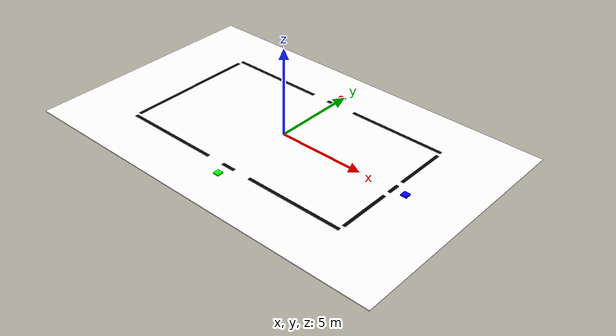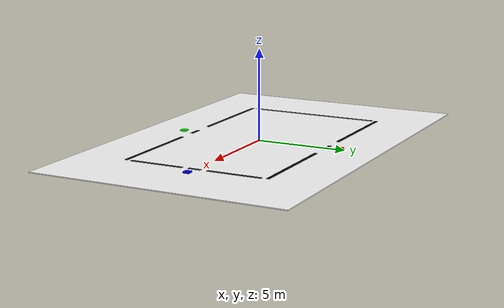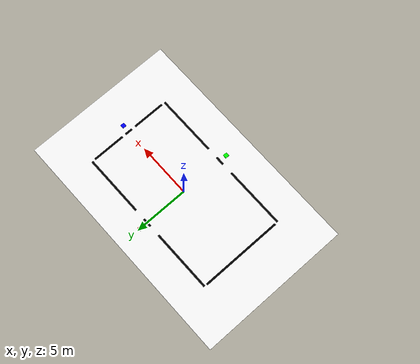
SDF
<?xml version="1.0" ?>
<sdf version="1.9">
  <world name="race_track_world">

    <light name="sun" type="directional">
      <pose>0 0 10 0 0 0</pose>
      <direction>-0.5 0.1 -1</direction>
    </light>

    <!-- Fehér padló -->
    <model name="ground_plane">
      <static>true</static>
      <link name="link">
        <collision name="collision">
          <geometry>
            <box>
              <size>22 14 0.05</size>
            </box>
          </geometry>
        </collision>
        <visual name="visual">
          <geometry>
            <box>
              <size>22 14 0.05</size>
            </box>
          </geometry>
          <material>
            <ambient>1 1 1 1</ambient>
            <diffuse>1 1 1 1</diffuse>
          </material>
        </visual>
      </link>
    </model>

    <!-- Felső hosszú fekete csíkok, 1 szakítással -->
    <model name="top_line_left">
      <static>true</static>
      <pose>-4.2 4 0.06 0 0 0</pose>
      <link name="link">
        <visual name="visual">
          <geometry>
            <box><size>5.6 0.18 0.02</size></box>
          </geometry>
          <material>
            <ambient>0 0 0 1</ambient>
            <diffuse>0 0 0 1</diffuse>
          </material>
        </visual>
      </link>
    </model>

    <model name="top_line_short">
      <static>true</static>
      <pose>0 4 0.06 0 0 0</pose>
      <link name="link">
        <visual name="visual">
          <geometry>
            <box><size>0.8 0.18 0.02</size></box>
          </geometry>
          <material>
            <ambient>0 0 0 1</ambient>
            <diffuse>0 0 0 1</diffuse>
          </material>
        </visual>
      </link>
    </model>

    <model name="top_line_right">
      <static>true</static>
      <pose>4.2 4 0.06 0 0 0</pose>
      <link name="link">
        <visual name="visual">
          <geometry>
            <box><size>5.6 0.18 0.02</size></box>
          </geometry>
          <material>
            <ambient>0 0 0 1</ambient>
            <diffuse>0 0 0 1</diffuse>
          </material>
        </visual>
      </link>
    </model>

    <!-- Alsó hosszú fekete csíkok, 1 szakítással -->
    <model name="bottom_line_left">
      <static>true</static>
      <pose>-4.2 -4 0.06 0 0 0</pose>
      <link name="link">
        <visual name="visual">
          <geometry>
            <box><size>5.6 0.18 0.02</size></box>
          </geometry>
          <material>
            <ambient>0 0 0 1</ambient>
            <diffuse>0 0 0 1</diffuse>
          </material>
        </visual>
      </link>
    </model>

    <model name="bottom_line_short">
      <static>true</static>
      <pose>0 -4 0.06 0 0 0</pose>
      <link name="link">
        <visual name="visual">
          <geometry>
            <box><size>0.8 0.18 0.02</size></box>
          </geometry>
          <material>
            <ambient>0 0 0 1</ambient>
            <diffuse>0 0 0 1</diffuse>
          </material>
        </visual>
      </link>
    </model>

    <model name="bottom_line_right">
      <static>true</static>
      <pose>4.2 -4 0.06 0 0 0</pose>
      <link name="link">
        <visual name="visual">
          <geometry>
            <box><size>5.6 0.18 0.02</size></box>
          </geometry>
          <material>
            <ambient>0 0 0 1</ambient>
            <diffuse>0 0 0 1</diffuse>
          </material>
        </visual>
      </link>
    </model>

    <!-- Bal oldali függőleges szakasz -->
    <model name="left_line">
      <static>true</static>
      <pose>-7 0 0.06 0 0 1.5708</pose>
      <link name="link">
        <visual name="visual">
          <geometry>
            <box><size>7.5 0.18 0.02</size></box>
          </geometry>
          <material>
            <ambient>0 0 0 1</ambient>
            <diffuse>0 0 0 1</diffuse>
          </material>
        </visual>
      </link>
    </model>

    <!-- Jobb oldali függőleges szakasz, 1 szakítással -->
    <model name="right_line_top">
      <static>true</static>
      <pose>7 2.2 0.06 0 0 1.5708</pose>
      <link name="link">
        <visual name="visual">
          <geometry>
            <box><size>3.0 0.18 0.02</size></box>
          </geometry>
          <material>
            <ambient>0 0 0 1</ambient>
            <diffuse>0 0 0 1</diffuse>
          </material>
        </visual>
      </link>
    </model>

    <model name="right_line_short">
      <static>true</static>
      <pose>7 0 0.06 0 0 1.5708</pose>
      <link name="link">
        <visual name="visual">
          <geometry>
            <box><size>0.7 0.18 0.02</size></box>
          </geometry>
          <material>
            <ambient>0 0 0 1</ambient>
            <diffuse>0 0 0 1</diffuse>
          </material>
        </visual>
      </link>
    </model>

    <model name="right_line_bottom">
      <static>true</static>
      <pose>7 -2.2 0.06 0 0 1.5708</pose>
      <link name="link">
        <visual name="visual">
          <geometry>
            <box><size>3.0 0.18 0.02</size></box>
          </geometry>
          <material>
            <ambient>0 0 0 1</ambient>
            <diffuse>0 0 0 1</diffuse>
          </material>
        </visual>
      </link>
    </model>

    <!-- Jelölők a pálya szélén: kis piros kockák -->
    <model name="marker_break_top">
      <static>true</static>
      <pose>0 4.7 0.08 0 0 0</pose>
      <link name="link">
        <visual name="visual">
          <geometry>
            <box><size>0.35 0.35 0.08</size></box>
          </geometry>
          <material>
            <ambient>1 0 0 1</ambient>
            <diffuse>1 0 0 1</diffuse>
          </material>
        </visual>
      </link>
    </model>

    <model name="marker_break_right">
      <static>true</static>
      <pose>7.7 0 0.08 0 0 0</pose>
      <link name="link">
        <visual name="visual">
          <geometry>
            <box><size>0.35 0.35 0.08</size></box>
          </geometry>
          <material>
            <ambient>0 0 1 1</ambient>
            <diffuse>0 0 1 1</diffuse>
          </material>
        </visual>
      </link>
    </model>

    <model name="marker_break_bottom">
      <static>true</static>
      <pose>0 -4.7 0.08 0 0 0</pose>
      <link name="link">
        <visual name="visual">
          <geometry>
            <box><size>0.35 0.35 0.08</size></box>
          </geometry>
          <material>
            <ambient>0 1 0 1</ambient>
            <diffuse>0 1 0 1</diffuse>
          </material>
        </visual>
      </link>
    </model>

  </world>
</sdf>
